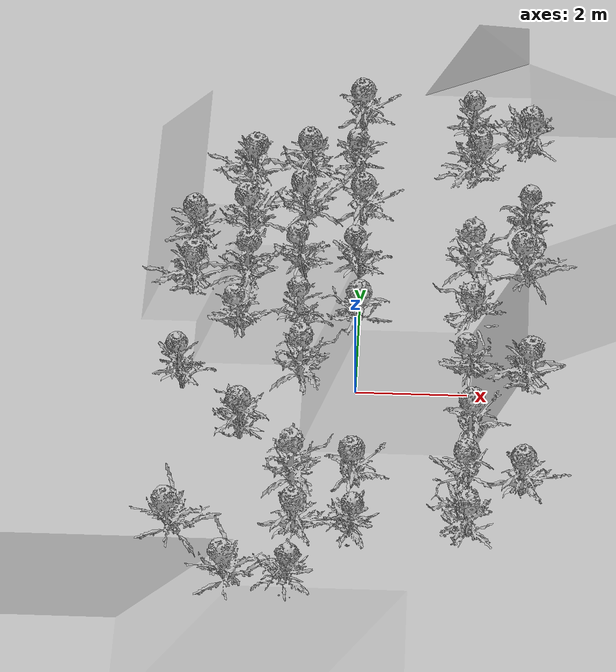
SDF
<sdf version="1.6">
 <world name="default">
  <include><uri>model://sun</uri></include>
  <include><uri>model://terrain1</uri><name>terrain1</name></include>
  <include>
   <pose>-3.015511912432544 -3.6450805763054435 0.21390916015802167 0 0 -1.5756801370158748</pose>
   <uri>model://artichoke1</uri>
   <name>artichoke2</name>
  </include>
  <include>
   <pose>-3.058058233770482 -0.5091213714385664 0.6307718891572014 0 0 -0.9340494795372898</pose>
   <uri>model://artichoke4</uri>
   <name>artichoke5</name>
  </include>
  <include>
   <pose>-3.0279975208027583 1.5008774838404848 0.931848834648648 0 0 1.4203742649840612</pose>
   <uri>model://artichoke1</uri>
   <name>artichoke7</name>
  </include>
  <include>
   <pose>-2.9814348741526673 2.5411029521322344 1.0812851848910467 0 0 2.263001635686771</pose>
   <uri>model://artichoke2</uri>
   <name>artichoke8</name>
  </include>
  <include>
   <pose>-1.9924250063557525 -4.66581015460657 0.13913589303572532 0 0 -1.4059155055040933</pose>
   <uri>model://artichoke1</uri>
   <name>artichoke11</name>
  </include>
  <include>
   <pose>-1.9768565420289457 -1.5880297221119601 0.5531005258839565 0 0 -0.6017099217600435</pose>
   <uri>model://artichoke2</uri>
   <name>artichoke14</name>
  </include>
  <include>
   <pose>-2.055430292690421 0.503350456717801 0.9169338383457076 0 0 0.16120542786420122</pose>
   <uri>model://artichoke4</uri>
   <name>artichoke16</name>
  </include>
  <include>
   <pose>-2.0052244299779516 1.4925618399954756 1.1240199278016851 0 0 2.7273080973746717</pose>
   <uri>model://artichoke1</uri>
   <name>artichoke17</name>
  </include>
  <include>
   <pose>-1.9727337807828185 2.5764440276199956 1.3376775579972835 0 0 -0.8561717729257112</pose>
   <uri>model://artichoke1</uri>
   <name>artichoke18</name>
  </include>
  <include>
   <pose>-2.019869527465081 3.6719077078489026 1.4912116684996097 0 0 1.2073139519851939</pose>
   <uri>model://artichoke1</uri>
   <name>artichoke19</name>
  </include>
  <include>
   <pose>-1.0408511438927084 -4.6496378009227035 0.18563053023061019 0 0 2.5896684593206025</pose>
   <uri>model://artichoke4</uri>
   <name>artichoke21</name>
  </include>
  <include>
   <pose>-0.9380212687367865 -3.574922979551643 0.32089214839911917 0 0 -2.689137879977553</pose>
   <uri>model://artichoke2</uri>
   <name>artichoke22</name>
  </include>
  <include>
   <pose>-1.0084672580372767 -2.5790555586311785 0.4573552106416684 0 0 -3.1204972061354006</pose>
   <uri>model://artichoke1</uri>
   <name>artichoke23</name>
  </include>
  <include>
   <pose>-0.9484130364155079 -0.4875633961331579 0.8399597360325128 0 0 3.1141120969406604</pose>
   <uri>model://artichoke1</uri>
   <name>artichoke25</name>
  </include>
  <include>
   <pose>-0.9976412617455572 0.49095628436859545 1.0543984227934724 0 0 -1.3359114414317625</pose>
   <uri>model://artichoke4</uri>
   <name>artichoke26</name>
  </include>
  <include>
   <pose>-0.9865512125766359 1.5923093509219377 1.3291361824543952 0 0 -0.2827298597770098</pose>
   <uri>model://artichoke4</uri>
   <name>artichoke27</name>
  </include>
  <include>
   <pose>-0.9521203692293484 2.665045305955649 1.5962542901192311 0 0 -1.078057734389441</pose>
   <uri>model://artichoke1</uri>
   <name>artichoke28</name>
  </include>
  <include>
   <pose>-0.9568234222851711 3.5975372739136997 1.7921576880638106 0 0 2.800492216185053</pose>
   <uri>model://artichoke2</uri>
   <name>artichoke29</name>
  </include>
  <include>
   <pose>0.030241150044753428 -3.6195671972962575 0.35321300073095746 0 0 2.17486332647546</pose>
   <uri>model://artichoke4</uri>
   <name>artichoke32</name>
  </include>
  <include>
   <pose>0.0238114998458418 -2.5928229585280382 0.49977394867756175 0 0 -1.9207116655011107</pose>
   <uri>model://artichoke2</uri>
   <name>artichoke33</name>
  </include>
  <include>
   <pose>0.05380147591559374 0.46657267399537344 1.1359853436484393 0 0 -0.09566586188468307</pose>
   <uri>model://artichoke2</uri>
   <name>artichoke36</name>
  </include>
  <include>
   <pose>0.020792159957011037 1.4728781206893173 1.401994011534667 0 0 -0.655367450219916</pose>
   <uri>model://artichoke4</uri>
   <name>artichoke37</name>
  </include>
  <include>
   <pose>0.02967225273565719 2.577267404214961 1.6986305248658864 0 0 -2.207873771889488</pose>
   <uri>model://artichoke2</uri>
   <name>artichoke38</name>
  </include>
  <include>
   <pose>-0.06046195960638527 3.564100219896765 1.921225801933359 0 0 1.2941846917891429</pose>
   <uri>model://artichoke4</uri>
   <name>artichoke39</name>
  </include>
  <include>
   <pose>-0.050245303983678734 4.652949923022538 2.0240746921565855 0 0 -2.1321064685887112</pose>
   <uri>model://artichoke2</uri>
   <name>artichoke40</name>
  </include>
  <include>
   <pose>2.0173334656723245 -3.581561966332205 0.39697253748266664 0 0 0.24739778544167113</pose>
   <uri>model://artichoke1</uri>
   <name>artichoke42</name>
  </include>
  <include>
   <pose>2.0203042690909534 -2.592632807284007 0.5289582694134708 0 0 1.186805012284303</pose>
   <uri>model://artichoke2</uri>
   <name>artichoke43</name>
  </include>
  <include>
   <pose>2.071801282772464 -1.5649250122564067 0.6945735490621627 0 0 -1.7740422057645433</pose>
   <uri>model://artichoke2</uri>
   <name>artichoke44</name>
  </include>
  <include>
   <pose>2.0683241768038214 -0.506655782817903 0.8973018186212316 0 0 -0.01228476383702004</pose>
   <uri>model://artichoke4</uri>
   <name>artichoke45</name>
  </include>
  <include>
   <pose>2.0691057699111726 0.5235083167467679 1.1188818974884926 0 0 -0.17730647282460898</pose>
   <uri>model://artichoke1</uri>
   <name>artichoke46</name>
  </include>
  <include>
   <pose>2.027156903712519 1.6359681022182664 1.3720998774180297 0 0 3.1217782496113315</pose>
   <uri>model://artichoke1</uri>
   <name>artichoke47</name>
  </include>
  <include>
   <pose>2.028677322541714 3.6207932751365552 1.7246725208847313 0 0 2.0058010184593495</pose>
   <uri>model://artichoke1</uri>
   <name>artichoke49</name>
  </include>
  <include>
   <pose>2.0321247964080476 4.567692193054105 1.772070398289232 0 0 -1.1952234781727464</pose>
   <uri>model://artichoke4</uri>
   <name>artichoke50</name>
  </include>
  <include>
   <pose>2.9653539012645522 -2.6667206360469073 0.5047843618893126 0 0 -2.646961759556713</pose>
   <uri>model://artichoke2</uri>
   <name>artichoke53</name>
  </include>
  <include>
   <pose>3.0012786831451015 -0.5211469459313625 0.8369525430680496 0 0 1.359712320704003</pose>
   <uri>model://artichoke1</uri>
   <name>artichoke55</name>
  </include>
  <include>
   <pose>3.028445147748445 1.581151066823148 1.220237426135325 0 0 -1.7542632757299033</pose>
   <uri>model://artichoke1</uri>
   <name>artichoke57</name>
  </include>
  <include>
   <pose>2.9971010665187223 2.5793712140996345 1.3857625780153553 0 0 -2.0238326351061575</pose>
   <uri>model://artichoke4</uri>
   <name>artichoke58</name>
  </include>
  <include>
   <pose>3.022011405402094 4.583331475637688 1.5076713814334968 0 0 0.32409386353363123</pose>
   <uri>model://artichoke1</uri>
   <name>artichoke60</name>
  </include>
 </world>
</sdf>

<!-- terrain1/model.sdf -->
<sdf version='1.7'>
  <model name="terrain1">
    <link name='link'>
      <pose>0 0 0 0 0 0</pose>
      <gravity>1</gravity>
      <self_collide>0</self_collide>
      <kinematic>0</kinematic>
      <enable_wind>0</enable_wind>
      <visual name='visual'>
        <pose>0 0 0 0 0 0</pose>
        <geometry>
          <mesh>
            <uri>model://terrain1/meshes/terrain1.obj</uri>
          </mesh>
        </geometry>
        <transparency>0</transparency>
        <cast_shadows>1</cast_shadows>
      </visual>
      <collision name='collision'>
        <laser_retro>0</laser_retro>
        <max_contacts>10</max_contacts>
        <pose>0 0 0 0 0 0</pose>
        <geometry>
          <mesh>
            <uri>model://terrain1/meshes/terrain1.obj</uri>
            <scale>1 1 1</scale>
          </mesh>
        </geometry>
      </collision>
    </link>
    <static>1</static>
    <allow_auto_disable>1</allow_auto_disable>
  </model>
</sdf>

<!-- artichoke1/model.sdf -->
<sdf version='1.7'>
  <model name="artichoke1">
    <link name='link'>
      <pose>0 0 0 0 0 0</pose>
      <gravity>1</gravity>
      <self_collide>0</self_collide>
      <kinematic>0</kinematic>
      <enable_wind>0</enable_wind>
      <visual name='visual'>
        <pose>0 0 0 0 0 0</pose>
        <geometry>
          <mesh>
            <uri>model://artichoke1/meshes/carciofo1.obj</uri>
          </mesh>
        </geometry>
        <transparency>0</transparency>
        <cast_shadows>1</cast_shadows>
      </visual>
      <collision name='collision'>
        <laser_retro>0</laser_retro>
        <max_contacts>10</max_contacts>
        <pose>0 0 0 0 0 0</pose>
        <geometry>
          <mesh>
            <uri>model://artichoke1/meshes/carciofo1.obj</uri>
            <scale>1 1 1</scale>
          </mesh>
        </geometry>
      </collision>
    </link>
    <static>1</static>
    <allow_auto_disable>1</allow_auto_disable>
  </model>
</sdf>

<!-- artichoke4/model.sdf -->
<sdf version='1.7'>
  <model name="artichoke4">
    <link name='link'>
      <pose>0 0 0 0 0 0</pose>
      <gravity>1</gravity>
      <self_collide>0</self_collide>
      <kinematic>0</kinematic>
      <enable_wind>0</enable_wind>
      <visual name='visual'>
        <pose>0 0 0 0 0 0</pose>
        <geometry>
          <mesh>
            <uri>model://artichoke4/meshes/carciofo4.obj</uri>
          </mesh>
        </geometry>
        <transparency>0</transparency>
        <cast_shadows>1</cast_shadows>
      </visual>
      <collision name='collision'>
        <laser_retro>0</laser_retro>
        <max_contacts>10</max_contacts>
        <pose>0 0 0 0 0 0</pose>
        <geometry>
          <mesh>
            <uri>model://artichoke4/meshes/carciofo4.obj</uri>
            <scale>1 1 1</scale>
          </mesh>
        </geometry>
      </collision>
    </link>
    <static>1</static>
    <allow_auto_disable>1</allow_auto_disable>
  </model>
</sdf>

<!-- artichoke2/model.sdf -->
<sdf version='1.7'>
  <model name="artichoke2">
    <link name='link'>
      <pose>0 0 0 0 0 0</pose>
      <gravity>1</gravity>
      <self_collide>0</self_collide>
      <kinematic>0</kinematic>
      <enable_wind>0</enable_wind>
      <visual name='visual'>
        <pose>0 0 0 0 0 0</pose>
        <geometry>
          <mesh>
            <uri>model://artichoke2/meshes/carciofo2.obj</uri>
          </mesh>
        </geometry>
        <transparency>0</transparency>
        <cast_shadows>1</cast_shadows>
      </visual>
      <collision name='collision'>
        <laser_retro>0</laser_retro>
        <max_contacts>10</max_contacts>
        <pose>0 0 0 0 0 0</pose>
        <geometry>
          <mesh>
            <uri>model://artichoke2/meshes/carciofo2.obj</uri>
            <scale>1 1 1</scale>
          </mesh>
        </geometry>
      </collision>
    </link>
    <static>1</static>
    <allow_auto_disable>1</allow_auto_disable>
  </model>
</sdf>
